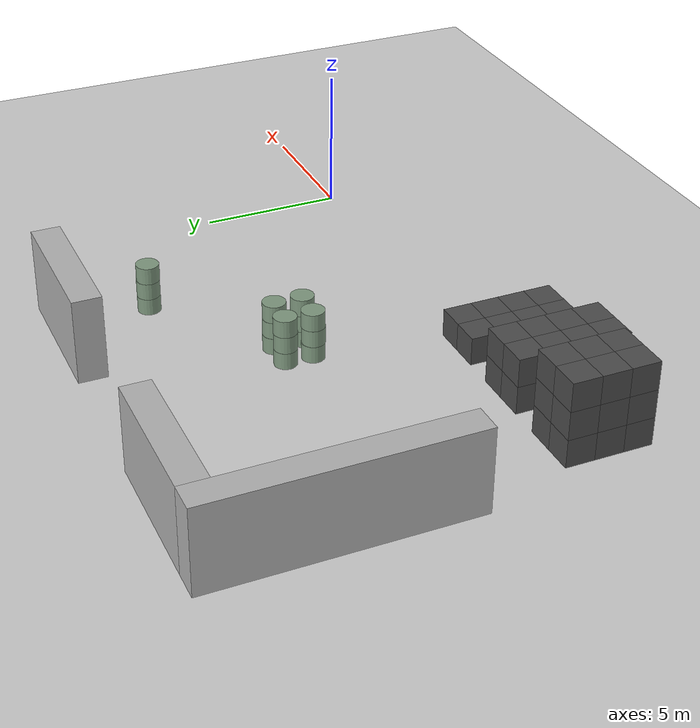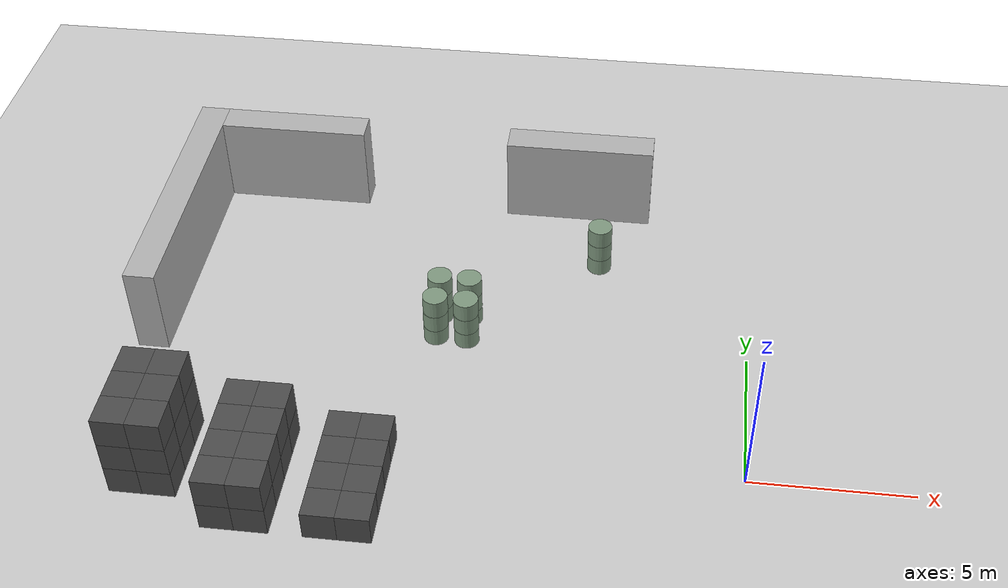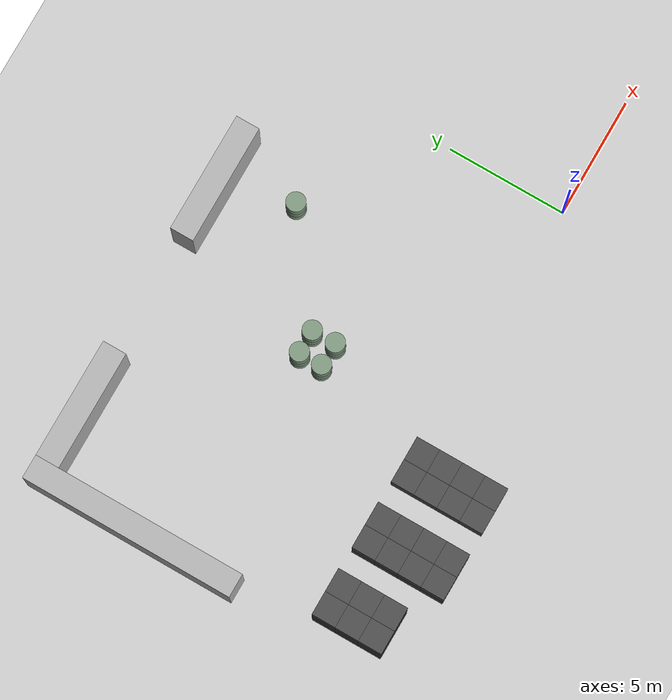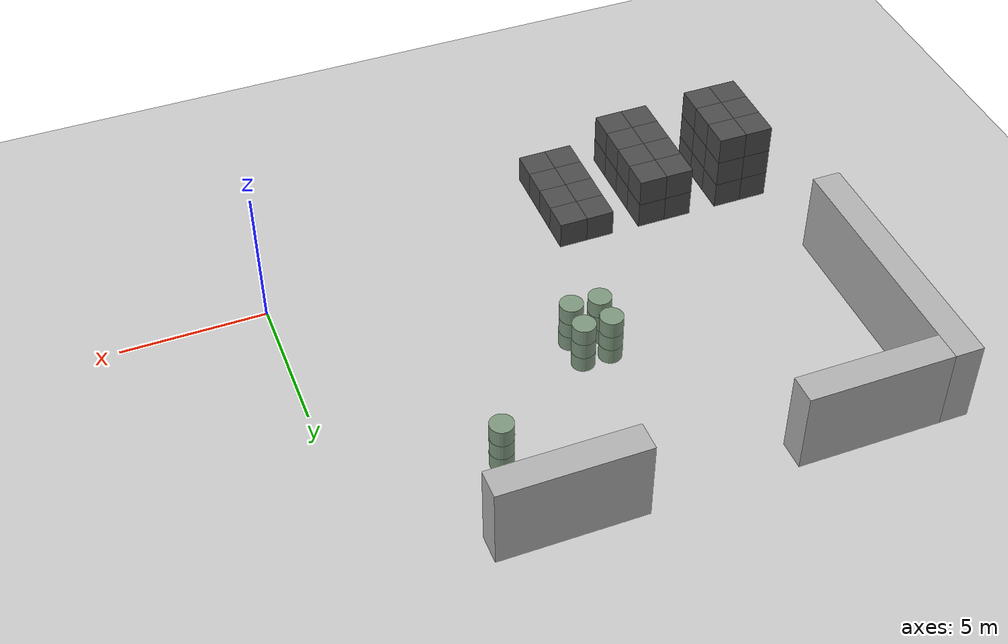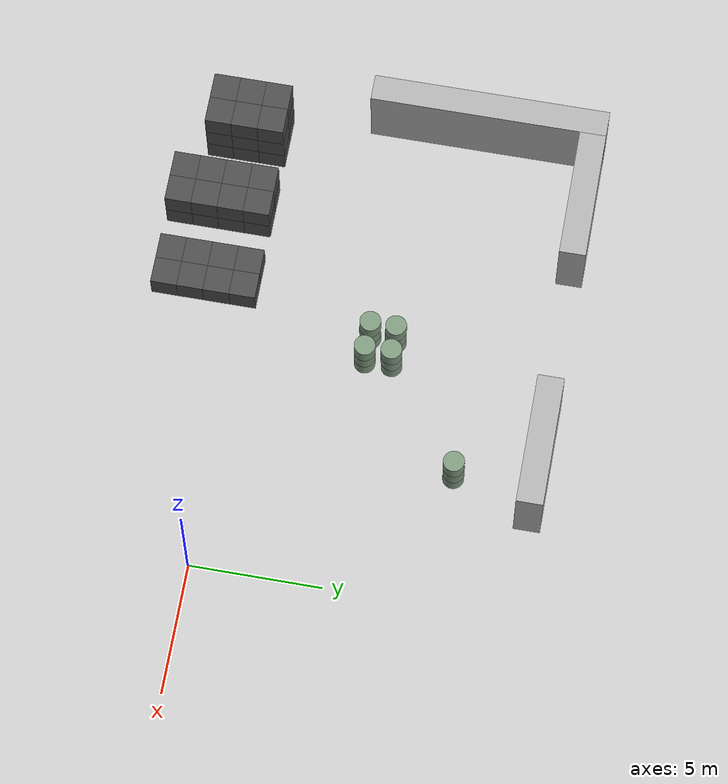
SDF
<sdf version="1.6">
 <world name="default">
  <include><uri>model://ground_plane</uri></include>
  <model name="wall_1">
   <pose>-19.0 8.0 1.5 0 -0 0</pose>
   <static>True</static>
   <link name="link">
    <inertial>
     <mass>100</mass>
     <inertia>
      <ixx>0.166667</ixx>
      <ixy>0</ixy>
      <ixz>0</ixz>
      <iyy>0.166667</iyy>
      <iyz>0</iyz>
      <izz>0.166667</izz>
     </inertia>
    </inertial>
    <collision name="collision"><geometry><box><size>1.0 9.0 3.0</size></box></geometry></collision>
    <visual name="visual">
     <geometry><box><size>1.0 9.0 3.0</size></box></geometry>
     <material><ambient>0.7 0.7 0.7 1</ambient><diffuse>0.7 0.7 0.7 1</diffuse></material>
    </visual>
   </link>
  </model>
  <model name="wall_9">
   <pose>-16.0 12.0 1.5 0 -0 0</pose>
   <static>True</static>
   <link name="link">
    <inertial>
     <mass>100</mass>
     <inertia>
      <ixx>0.166667</ixx>
      <ixy>0</ixy>
      <ixz>0</ixz>
      <iyy>0.166667</iyy>
      <iyz>0</iyz>
      <izz>0.166667</izz>
     </inertia>
    </inertial>
    <collision name="collision"><geometry><box><size>5.0 1.0 3.0</size></box></geometry></collision>
    <visual name="visual">
     <geometry><box><size>5.0 1.0 3.0</size></box></geometry>
     <material><ambient>0.7 0.7 0.7 1</ambient><diffuse>0.7 0.7 0.7 1</diffuse></material>
    </visual>
   </link>
  </model>
  <model name="wall_10">
   <pose>-6.0 12.0 1.5 0 -0 0</pose>
   <static>True</static>
   <link name="link">
    <inertial>
     <mass>100</mass>
     <inertia>
      <ixx>0.166667</ixx>
      <ixy>0</ixy>
      <ixz>0</ixz>
      <iyy>0.166667</iyy>
      <iyz>0</iyz>
      <izz>0.166667</izz>
     </inertia>
    </inertial>
    <collision name="collision"><geometry><box><size>5.0 1.0 3.0</size></box></geometry></collision>
    <visual name="visual">
     <geometry><box><size>5.0 1.0 3.0</size></box></geometry>
     <material><ambient>0.7 0.7 0.7 1</ambient><diffuse>0.7 0.7 0.7 1</diffuse></material>
    </visual>
   </link>
  </model>
  <model name="unit_box_6">
   <pose>-18.0 -2.0 0.5 0 -0 0</pose>
   <static>True</static>
   <link name="link">
    <inertial>
     <mass>100</mass>
     <inertia>
      <ixx>0.166667</ixx>
      <ixy>0</ixy>
      <ixz>0</ixz>
      <iyy>0.166667</iyy>
      <iyz>0</iyz>
      <izz>0.166667</izz>
     </inertia>
    </inertial>
    <collision name="collision"><geometry><box><size>1.0 1.0 1.0</size></box></geometry></collision>
    <visual name="visual">
     <geometry><box><size>1.0 1.0 1.0</size></box></geometry>
     <material><ambient>0.3 0.3 0.3 1</ambient><diffuse>0.3 0.3 0.3 1</diffuse></material>
    </visual>
   </link>
  </model>
  <model name="unit_box_7">
   <pose>-18.0 -2.0 1.5 0 -0 0</pose>
   <static>True</static>
   <link name="link">
    <inertial>
     <mass>100</mass>
     <inertia>
      <ixx>0.166667</ixx>
      <ixy>0</ixy>
      <ixz>0</ixz>
      <iyy>0.166667</iyy>
      <iyz>0</iyz>
      <izz>0.166667</izz>
     </inertia>
    </inertial>
    <collision name="collision"><geometry><box><size>1.0 1.0 1.0</size></box></geometry></collision>
    <visual name="visual">
     <geometry><box><size>1.0 1.0 1.0</size></box></geometry>
     <material><ambient>0.3 0.3 0.3 1</ambient><diffuse>0.3 0.3 0.3 1</diffuse></material>
    </visual>
   </link>
  </model>
  <model name="unit_box_8">
   <pose>-18.0 -2.0 2.5 0 -0 0</pose>
   <static>True</static>
   <link name="link">
    <inertial>
     <mass>100</mass>
     <inertia>
      <ixx>0.166667</ixx>
      <ixy>0</ixy>
      <ixz>0</ixz>
      <iyy>0.166667</iyy>
      <iyz>0</iyz>
      <izz>0.166667</izz>
     </inertia>
    </inertial>
    <collision name="collision"><geometry><box><size>1.0 1.0 1.0</size></box></geometry></collision>
    <visual name="visual">
     <geometry><box><size>1.0 1.0 1.0</size></box></geometry>
     <material><ambient>0.3 0.3 0.3 1</ambient><diffuse>0.3 0.3 0.3 1</diffuse></material>
    </visual>
   </link>
  </model>
  <model name="unit_box_9">
   <pose>-18.0 -1.0 0.5 0 -0 0</pose>
   <static>True</static>
   <link name="link">
    <inertial>
     <mass>100</mass>
     <inertia>
      <ixx>0.166667</ixx>
      <ixy>0</ixy>
      <ixz>0</ixz>
      <iyy>0.166667</iyy>
      <iyz>0</iyz>
      <izz>0.166667</izz>
     </inertia>
    </inertial>
    <collision name="collision"><geometry><box><size>1.0 1.0 1.0</size></box></geometry></collision>
    <visual name="visual">
     <geometry><box><size>1.0 1.0 1.0</size></box></geometry>
     <material><ambient>0.3 0.3 0.3 1</ambient><diffuse>0.3 0.3 0.3 1</diffuse></material>
    </visual>
   </link>
  </model>
  <model name="unit_box_10">
   <pose>-18.0 -1.0 1.5 0 -0 0</pose>
   <static>True</static>
   <link name="link">
    <inertial>
     <mass>100</mass>
     <inertia>
      <ixx>0.166667</ixx>
      <ixy>0</ixy>
      <ixz>0</ixz>
      <iyy>0.166667</iyy>
      <iyz>0</iyz>
      <izz>0.166667</izz>
     </inertia>
    </inertial>
    <collision name="collision"><geometry><box><size>1.0 1.0 1.0</size></box></geometry></collision>
    <visual name="visual">
     <geometry><box><size>1.0 1.0 1.0</size></box></geometry>
     <material><ambient>0.3 0.3 0.3 1</ambient><diffuse>0.3 0.3 0.3 1</diffuse></material>
    </visual>
   </link>
  </model>
  <model name="unit_box_11">
   <pose>-18.0 -1.0 2.5 0 -0 0</pose>
   <static>True</static>
   <link name="link">
    <inertial>
     <mass>100</mass>
     <inertia>
      <ixx>0.166667</ixx>
      <ixy>0</ixy>
      <ixz>0</ixz>
      <iyy>0.166667</iyy>
      <iyz>0</iyz>
      <izz>0.166667</izz>
     </inertia>
    </inertial>
    <collision name="collision"><geometry><box><size>1.0 1.0 1.0</size></box></geometry></collision>
    <visual name="visual">
     <geometry><box><size>1.0 1.0 1.0</size></box></geometry>
     <material><ambient>0.3 0.3 0.3 1</ambient><diffuse>0.3 0.3 0.3 1</diffuse></material>
    </visual>
   </link>
  </model>
  <model name="unit_box_12">
   <pose>-18.0 0.0 0.5 0 -0 0</pose>
   <static>True</static>
   <link name="link">
    <inertial>
     <mass>100</mass>
     <inertia>
      <ixx>0.166667</ixx>
      <ixy>0</ixy>
      <ixz>0</ixz>
      <iyy>0.166667</iyy>
      <iyz>0</iyz>
      <izz>0.166667</izz>
     </inertia>
    </inertial>
    <collision name="collision"><geometry><box><size>1.0 1.0 1.0</size></box></geometry></collision>
    <visual name="visual">
     <geometry><box><size>1.0 1.0 1.0</size></box></geometry>
     <material><ambient>0.3 0.3 0.3 1</ambient><diffuse>0.3 0.3 0.3 1</diffuse></material>
    </visual>
   </link>
  </model>
  <model name="unit_box_13">
   <pose>-18.0 0.0 1.5 0 -0 0</pose>
   <static>True</static>
   <link name="link">
    <inertial>
     <mass>100</mass>
     <inertia>
      <ixx>0.166667</ixx>
      <ixy>0</ixy>
      <ixz>0</ixz>
      <iyy>0.166667</iyy>
      <iyz>0</iyz>
      <izz>0.166667</izz>
     </inertia>
    </inertial>
    <collision name="collision"><geometry><box><size>1.0 1.0 1.0</size></box></geometry></collision>
    <visual name="visual">
     <geometry><box><size>1.0 1.0 1.0</size></box></geometry>
     <material><ambient>0.3 0.3 0.3 1</ambient><diffuse>0.3 0.3 0.3 1</diffuse></material>
    </visual>
   </link>
  </model>
  <model name="unit_box_14">
   <pose>-18.0 0.0 2.5 0 -0 0</pose>
   <static>True</static>
   <link name="link">
    <inertial>
     <mass>100</mass>
     <inertia>
      <ixx>0.166667</ixx>
      <ixy>0</ixy>
      <ixz>0</ixz>
      <iyy>0.166667</iyy>
      <iyz>0</iyz>
      <izz>0.166667</izz>
     </inertia>
    </inertial>
    <collision name="collision"><geometry><box><size>1.0 1.0 1.0</size></box></geometry></collision>
    <visual name="visual">
     <geometry><box><size>1.0 1.0 1.0</size></box></geometry>
     <material><ambient>0.3 0.3 0.3 1</ambient><diffuse>0.3 0.3 0.3 1</diffuse></material>
    </visual>
   </link>
  </model>
  <model name="unit_box_21">
   <pose>-17.0 -2.0 0.5 0 -0 0</pose>
   <static>True</static>
   <link name="link">
    <inertial>
     <mass>100</mass>
     <inertia>
      <ixx>0.166667</ixx>
      <ixy>0</ixy>
      <ixz>0</ixz>
      <iyy>0.166667</iyy>
      <iyz>0</iyz>
      <izz>0.166667</izz>
     </inertia>
    </inertial>
    <collision name="collision"><geometry><box><size>1.0 1.0 1.0</size></box></geometry></collision>
    <visual name="visual">
     <geometry><box><size>1.0 1.0 1.0</size></box></geometry>
     <material><ambient>0.3 0.3 0.3 1</ambient><diffuse>0.3 0.3 0.3 1</diffuse></material>
    </visual>
   </link>
  </model>
  <model name="unit_box_22">
   <pose>-17.0 -2.0 1.5 0 -0 0</pose>
   <static>True</static>
   <link name="link">
    <inertial>
     <mass>100</mass>
     <inertia>
      <ixx>0.166667</ixx>
      <ixy>0</ixy>
      <ixz>0</ixz>
      <iyy>0.166667</iyy>
      <iyz>0</iyz>
      <izz>0.166667</izz>
     </inertia>
    </inertial>
    <collision name="collision"><geometry><box><size>1.0 1.0 1.0</size></box></geometry></collision>
    <visual name="visual">
     <geometry><box><size>1.0 1.0 1.0</size></box></geometry>
     <material><ambient>0.3 0.3 0.3 1</ambient><diffuse>0.3 0.3 0.3 1</diffuse></material>
    </visual>
   </link>
  </model>
  <model name="unit_box_23">
   <pose>-17.0 -2.0 2.5 0 -0 0</pose>
   <static>True</static>
   <link name="link">
    <inertial>
     <mass>100</mass>
     <inertia>
      <ixx>0.166667</ixx>
      <ixy>0</ixy>
      <ixz>0</ixz>
      <iyy>0.166667</iyy>
      <iyz>0</iyz>
      <izz>0.166667</izz>
     </inertia>
    </inertial>
    <collision name="collision"><geometry><box><size>1.0 1.0 1.0</size></box></geometry></collision>
    <visual name="visual">
     <geometry><box><size>1.0 1.0 1.0</size></box></geometry>
     <material><ambient>0.3 0.3 0.3 1</ambient><diffuse>0.3 0.3 0.3 1</diffuse></material>
    </visual>
   </link>
  </model>
  <model name="unit_box_24">
   <pose>-17.0 -1.0 0.5 0 -0 0</pose>
   <static>True</static>
   <link name="link">
    <inertial>
     <mass>100</mass>
     <inertia>
      <ixx>0.166667</ixx>
      <ixy>0</ixy>
      <ixz>0</ixz>
      <iyy>0.166667</iyy>
      <iyz>0</iyz>
      <izz>0.166667</izz>
     </inertia>
    </inertial>
    <collision name="collision"><geometry><box><size>1.0 1.0 1.0</size></box></geometry></collision>
    <visual name="visual">
     <geometry><box><size>1.0 1.0 1.0</size></box></geometry>
     <material><ambient>0.3 0.3 0.3 1</ambient><diffuse>0.3 0.3 0.3 1</diffuse></material>
    </visual>
   </link>
  </model>
  <model name="unit_box_25">
   <pose>-17.0 -1.0 1.5 0 -0 0</pose>
   <static>True</static>
   <link name="link">
    <inertial>
     <mass>100</mass>
     <inertia>
      <ixx>0.166667</ixx>
      <ixy>0</ixy>
      <ixz>0</ixz>
      <iyy>0.166667</iyy>
      <iyz>0</iyz>
      <izz>0.166667</izz>
     </inertia>
    </inertial>
    <collision name="collision"><geometry><box><size>1.0 1.0 1.0</size></box></geometry></collision>
    <visual name="visual">
     <geometry><box><size>1.0 1.0 1.0</size></box></geometry>
     <material><ambient>0.3 0.3 0.3 1</ambient><diffuse>0.3 0.3 0.3 1</diffuse></material>
    </visual>
   </link>
  </model>
  <model name="unit_box_26">
   <pose>-17.0 -1.0 2.5 0 -0 0</pose>
   <static>True</static>
   <link name="link">
    <inertial>
     <mass>100</mass>
     <inertia>
      <ixx>0.166667</ixx>
      <ixy>0</ixy>
      <ixz>0</ixz>
      <iyy>0.166667</iyy>
      <iyz>0</iyz>
      <izz>0.166667</izz>
     </inertia>
    </inertial>
    <collision name="collision"><geometry><box><size>1.0 1.0 1.0</size></box></geometry></collision>
    <visual name="visual">
     <geometry><box><size>1.0 1.0 1.0</size></box></geometry>
     <material><ambient>0.3 0.3 0.3 1</ambient><diffuse>0.3 0.3 0.3 1</diffuse></material>
    </visual>
   </link>
  </model>
  <model name="unit_box_27">
   <pose>-17.0 0.0 0.5 0 -0 0</pose>
   <static>True</static>
   <link name="link">
    <inertial>
     <mass>100</mass>
     <inertia>
      <ixx>0.166667</ixx>
      <ixy>0</ixy>
      <ixz>0</ixz>
      <iyy>0.166667</iyy>
      <iyz>0</iyz>
      <izz>0.166667</izz>
     </inertia>
    </inertial>
    <collision name="collision"><geometry><box><size>1.0 1.0 1.0</size></box></geometry></collision>
    <visual name="visual">
     <geometry><box><size>1.0 1.0 1.0</size></box></geometry>
     <material><ambient>0.3 0.3 0.3 1</ambient><diffuse>0.3 0.3 0.3 1</diffuse></material>
    </visual>
   </link>
  </model>
  <model name="unit_box_28">
   <pose>-17.0 0.0 1.5 0 -0 0</pose>
   <static>True</static>
   <link name="link">
    <inertial>
     <mass>100</mass>
     <inertia>
      <ixx>0.166667</ixx>
      <ixy>0</ixy>
      <ixz>0</ixz>
      <iyy>0.166667</iyy>
      <iyz>0</iyz>
      <izz>0.166667</izz>
     </inertia>
    </inertial>
    <collision name="collision"><geometry><box><size>1.0 1.0 1.0</size></box></geometry></collision>
    <visual name="visual">
     <geometry><box><size>1.0 1.0 1.0</size></box></geometry>
     <material><ambient>0.3 0.3 0.3 1</ambient><diffuse>0.3 0.3 0.3 1</diffuse></material>
    </visual>
   </link>
  </model>
  <model name="unit_box_29">
   <pose>-17.0 0.0 2.5 0 -0 0</pose>
   <static>True</static>
   <link name="link">
    <inertial>
     <mass>100</mass>
     <inertia>
      <ixx>0.166667</ixx>
      <ixy>0</ixy>
      <ixz>0</ixz>
      <iyy>0.166667</iyy>
      <iyz>0</iyz>
      <izz>0.166667</izz>
     </inertia>
    </inertial>
    <collision name="collision"><geometry><box><size>1.0 1.0 1.0</size></box></geometry></collision>
    <visual name="visual">
     <geometry><box><size>1.0 1.0 1.0</size></box></geometry>
     <material><ambient>0.3 0.3 0.3 1</ambient><diffuse>0.3 0.3 0.3 1</diffuse></material>
    </visual>
   </link>
  </model>
  <model name="unit_box_32">
   <pose>-15.0 -3.0 0.5 0 -0 0</pose>
   <static>True</static>
   <link name="link">
    <inertial>
     <mass>100</mass>
     <inertia>
      <ixx>0.166667</ixx>
      <ixy>0</ixy>
      <ixz>0</ixz>
      <iyy>0.166667</iyy>
      <iyz>0</iyz>
      <izz>0.166667</izz>
     </inertia>
    </inertial>
    <collision name="collision"><geometry><box><size>1.0 1.0 1.0</size></box></geometry></collision>
    <visual name="visual">
     <geometry><box><size>1.0 1.0 1.0</size></box></geometry>
     <material><ambient>0.3 0.3 0.3 1</ambient><diffuse>0.3 0.3 0.3 1</diffuse></material>
    </visual>
   </link>
  </model>
  <model name="unit_box_33">
   <pose>-15.0 -3.0 1.5 0 -0 0</pose>
   <static>True</static>
   <link name="link">
    <inertial>
     <mass>100</mass>
     <inertia>
      <ixx>0.166667</ixx>
      <ixy>0</ixy>
      <ixz>0</ixz>
      <iyy>0.166667</iyy>
      <iyz>0</iyz>
      <izz>0.166667</izz>
     </inertia>
    </inertial>
    <collision name="collision"><geometry><box><size>1.0 1.0 1.0</size></box></geometry></collision>
    <visual name="visual">
     <geometry><box><size>1.0 1.0 1.0</size></box></geometry>
     <material><ambient>0.3 0.3 0.3 1</ambient><diffuse>0.3 0.3 0.3 1</diffuse></material>
    </visual>
   </link>
  </model>
  <model name="unit_box_34">
   <pose>-15.0 -2.0 0.5 0 -0 0</pose>
   <static>True</static>
   <link name="link">
    <inertial>
     <mass>100</mass>
     <inertia>
      <ixx>0.166667</ixx>
      <ixy>0</ixy>
      <ixz>0</ixz>
      <iyy>0.166667</iyy>
      <iyz>0</iyz>
      <izz>0.166667</izz>
     </inertia>
    </inertial>
    <collision name="collision"><geometry><box><size>1.0 1.0 1.0</size></box></geometry></collision>
    <visual name="visual">
     <geometry><box><size>1.0 1.0 1.0</size></box></geometry>
     <material><ambient>0.3 0.3 0.3 1</ambient><diffuse>0.3 0.3 0.3 1</diffuse></material>
    </visual>
   </link>
  </model>
  <model name="unit_box_35">
   <pose>-15.0 -2.0 1.5 0 -0 0</pose>
   <static>True</static>
   <link name="link">
    <inertial>
     <mass>100</mass>
     <inertia>
      <ixx>0.166667</ixx>
      <ixy>0</ixy>
      <ixz>0</ixz>
      <iyy>0.166667</iyy>
      <iyz>0</iyz>
      <izz>0.166667</izz>
     </inertia>
    </inertial>
    <collision name="collision"><geometry><box><size>1.0 1.0 1.0</size></box></geometry></collision>
    <visual name="visual">
     <geometry><box><size>1.0 1.0 1.0</size></box></geometry>
     <material><ambient>0.3 0.3 0.3 1</ambient><diffuse>0.3 0.3 0.3 1</diffuse></material>
    </visual>
   </link>
  </model>
  <model name="unit_box_36">
   <pose>-15.0 -1.0 0.5 0 -0 0</pose>
   <static>True</static>
   <link name="link">
    <inertial>
     <mass>100</mass>
     <inertia>
      <ixx>0.166667</ixx>
      <ixy>0</ixy>
      <ixz>0</ixz>
      <iyy>0.166667</iyy>
      <iyz>0</iyz>
      <izz>0.166667</izz>
     </inertia>
    </inertial>
    <collision name="collision"><geometry><box><size>1.0 1.0 1.0</size></box></geometry></collision>
    <visual name="visual">
     <geometry><box><size>1.0 1.0 1.0</size></box></geometry>
     <material><ambient>0.3 0.3 0.3 1</ambient><diffuse>0.3 0.3 0.3 1</diffuse></material>
    </visual>
   </link>
  </model>
  <model name="unit_box_37">
   <pose>-15.0 -1.0 1.5 0 -0 0</pose>
   <static>True</static>
   <link name="link">
    <inertial>
     <mass>100</mass>
     <inertia>
      <ixx>0.166667</ixx>
      <ixy>0</ixy>
      <ixz>0</ixz>
      <iyy>0.166667</iyy>
      <iyz>0</iyz>
      <izz>0.166667</izz>
     </inertia>
    </inertial>
    <collision name="collision"><geometry><box><size>1.0 1.0 1.0</size></box></geometry></collision>
    <visual name="visual">
     <geometry><box><size>1.0 1.0 1.0</size></box></geometry>
     <material><ambient>0.3 0.3 0.3 1</ambient><diffuse>0.3 0.3 0.3 1</diffuse></material>
    </visual>
   </link>
  </model>
  <model name="unit_box_38">
   <pose>-15.0 0.0 0.5 0 -0 0</pose>
   <static>True</static>
   <link name="link">
    <inertial>
     <mass>100</mass>
     <inertia>
      <ixx>0.166667</ixx>
      <ixy>0</ixy>
      <ixz>0</ixz>
      <iyy>0.166667</iyy>
      <iyz>0</iyz>
      <izz>0.166667</izz>
     </inertia>
    </inertial>
    <collision name="collision"><geometry><box><size>1.0 1.0 1.0</size></box></geometry></collision>
    <visual name="visual">
     <geometry><box><size>1.0 1.0 1.0</size></box></geometry>
     <material><ambient>0.3 0.3 0.3 1</ambient><diffuse>0.3 0.3 0.3 1</diffuse></material>
    </visual>
   </link>
  </model>
  <model name="unit_box_39">
   <pose>-15.0 0.0 1.5 0 -0 0</pose>
   <static>True</static>
   <link name="link">
    <inertial>
     <mass>100</mass>
     <inertia>
      <ixx>0.166667</ixx>
      <ixy>0</ixy>
      <ixz>0</ixz>
      <iyy>0.166667</iyy>
      <iyz>0</iyz>
      <izz>0.166667</izz>
     </inertia>
    </inertial>
    <collision name="collision"><geometry><box><size>1.0 1.0 1.0</size></box></geometry></collision>
    <visual name="visual">
     <geometry><box><size>1.0 1.0 1.0</size></box></geometry>
     <material><ambient>0.3 0.3 0.3 1</ambient><diffuse>0.3 0.3 0.3 1</diffuse></material>
    </visual>
   </link>
  </model>
  <model name="unit_box_42">
   <pose>-14.0 -3.0 0.5 0 -0 0</pose>
   <static>True</static>
   <link name="link">
    <inertial>
     <mass>100</mass>
     <inertia>
      <ixx>0.166667</ixx>
      <ixy>0</ixy>
      <ixz>0</ixz>
      <iyy>0.166667</iyy>
      <iyz>0</iyz>
      <izz>0.166667</izz>
     </inertia>
    </inertial>
    <collision name="collision"><geometry><box><size>1.0 1.0 1.0</size></box></geometry></collision>
    <visual name="visual">
     <geometry><box><size>1.0 1.0 1.0</size></box></geometry>
     <material><ambient>0.3 0.3 0.3 1</ambient><diffuse>0.3 0.3 0.3 1</diffuse></material>
    </visual>
   </link>
  </model>
  <model name="unit_box_43">
   <pose>-14.0 -3.0 1.5 0 -0 0</pose>
   <static>True</static>
   <link name="link">
    <inertial>
     <mass>100</mass>
     <inertia>
      <ixx>0.166667</ixx>
      <ixy>0</ixy>
      <ixz>0</ixz>
      <iyy>0.166667</iyy>
      <iyz>0</iyz>
      <izz>0.166667</izz>
     </inertia>
    </inertial>
    <collision name="collision"><geometry><box><size>1.0 1.0 1.0</size></box></geometry></collision>
    <visual name="visual">
     <geometry><box><size>1.0 1.0 1.0</size></box></geometry>
     <material><ambient>0.3 0.3 0.3 1</ambient><diffuse>0.3 0.3 0.3 1</diffuse></material>
    </visual>
   </link>
  </model>
  <model name="unit_box_44">
   <pose>-14.0 -2.0 0.5 0 -0 0</pose>
   <static>True</static>
   <link name="link">
    <inertial>
     <mass>100</mass>
     <inertia>
      <ixx>0.166667</ixx>
      <ixy>0</ixy>
      <ixz>0</ixz>
      <iyy>0.166667</iyy>
      <iyz>0</iyz>
      <izz>0.166667</izz>
     </inertia>
    </inertial>
    <collision name="collision"><geometry><box><size>1.0 1.0 1.0</size></box></geometry></collision>
    <visual name="visual">
     <geometry><box><size>1.0 1.0 1.0</size></box></geometry>
     <material><ambient>0.3 0.3 0.3 1</ambient><diffuse>0.3 0.3 0.3 1</diffuse></material>
    </visual>
   </link>
  </model>
  <model name="unit_box_45">
   <pose>-14.0 -2.0 1.5 0 -0 0</pose>
   <static>True</static>
   <link name="link">
    <inertial>
     <mass>100</mass>
     <inertia>
      <ixx>0.166667</ixx>
      <ixy>0</ixy>
      <ixz>0</ixz>
      <iyy>0.166667</iyy>
      <iyz>0</iyz>
      <izz>0.166667</izz>
     </inertia>
    </inertial>
    <collision name="collision"><geometry><box><size>1.0 1.0 1.0</size></box></geometry></collision>
    <visual name="visual">
     <geometry><box><size>1.0 1.0 1.0</size></box></geometry>
     <material><ambient>0.3 0.3 0.3 1</ambient><diffuse>0.3 0.3 0.3 1</diffuse></material>
    </visual>
   </link>
  </model>
  <model name="unit_box_46">
   <pose>-14.0 -1.0 0.5 0 -0 0</pose>
   <static>True</static>
   <link name="link">
    <inertial>
     <mass>100</mass>
     <inertia>
      <ixx>0.166667</ixx>
      <ixy>0</ixy>
      <ixz>0</ixz>
      <iyy>0.166667</iyy>
      <iyz>0</iyz>
      <izz>0.166667</izz>
     </inertia>
    </inertial>
    <collision name="collision"><geometry><box><size>1.0 1.0 1.0</size></box></geometry></collision>
    <visual name="visual">
     <geometry><box><size>1.0 1.0 1.0</size></box></geometry>
     <material><ambient>0.3 0.3 0.3 1</ambient><diffuse>0.3 0.3 0.3 1</diffuse></material>
    </visual>
   </link>
  </model>
  <model name="unit_box_47">
   <pose>-14.0 -1.0 1.5 0 -0 0</pose>
   <static>True</static>
   <link name="link">
    <inertial>
     <mass>100</mass>
     <inertia>
      <ixx>0.166667</ixx>
      <ixy>0</ixy>
      <ixz>0</ixz>
      <iyy>0.166667</iyy>
      <iyz>0</iyz>
      <izz>0.166667</izz>
     </inertia>
    </inertial>
    <collision name="collision"><geometry><box><size>1.0 1.0 1.0</size></box></geometry></collision>
    <visual name="visual">
     <geometry><box><size>1.0 1.0 1.0</size></box></geometry>
     <material><ambient>0.3 0.3 0.3 1</ambient><diffuse>0.3 0.3 0.3 1</diffuse></material>
    </visual>
   </link>
  </model>
  <model name="unit_box_48">
   <pose>-14.0 0.0 0.5 0 -0 0</pose>
   <static>True</static>
   <link name="link">
    <inertial>
     <mass>100</mass>
     <inertia>
      <ixx>0.166667</ixx>
      <ixy>0</ixy>
      <ixz>0</ixz>
      <iyy>0.166667</iyy>
      <iyz>0</iyz>
      <izz>0.166667</izz>
     </inertia>
    </inertial>
    <collision name="collision"><geometry><box><size>1.0 1.0 1.0</size></box></geometry></collision>
    <visual name="visual">
     <geometry><box><size>1.0 1.0 1.0</size></box></geometry>
     <material><ambient>0.3 0.3 0.3 1</ambient><diffuse>0.3 0.3 0.3 1</diffuse></material>
    </visual>
   </link>
  </model>
  <model name="unit_box_49">
   <pose>-14.0 0.0 1.5 0 -0 0</pose>
   <static>True</static>
   <link name="link">
    <inertial>
     <mass>100</mass>
     <inertia>
      <ixx>0.166667</ixx>
      <ixy>0</ixy>
      <ixz>0</ixz>
      <iyy>0.166667</iyy>
      <iyz>0</iyz>
      <izz>0.166667</izz>
     </inertia>
    </inertial>
    <collision name="collision"><geometry><box><size>1.0 1.0 1.0</size></box></geometry></collision>
    <visual name="visual">
     <geometry><box><size>1.0 1.0 1.0</size></box></geometry>
     <material><ambient>0.3 0.3 0.3 1</ambient><diffuse>0.3 0.3 0.3 1</diffuse></material>
    </visual>
   </link>
  </model>
  <model name="unit_box_51">
   <pose>-12.0 -3.0 0.5 0 -0 0</pose>
   <static>True</static>
   <link name="link">
    <inertial>
     <mass>100</mass>
     <inertia>
      <ixx>0.166667</ixx>
      <ixy>0</ixy>
      <ixz>0</ixz>
      <iyy>0.166667</iyy>
      <iyz>0</iyz>
      <izz>0.166667</izz>
     </inertia>
    </inertial>
    <collision name="collision"><geometry><box><size>1.0 1.0 1.0</size></box></geometry></collision>
    <visual name="visual">
     <geometry><box><size>1.0 1.0 1.0</size></box></geometry>
     <material><ambient>0.3 0.3 0.3 1</ambient><diffuse>0.3 0.3 0.3 1</diffuse></material>
    </visual>
   </link>
  </model>
  <model name="unit_box_52">
   <pose>-12.0 -2.0 0.5 0 -0 0</pose>
   <static>True</static>
   <link name="link">
    <inertial>
     <mass>100</mass>
     <inertia>
      <ixx>0.166667</ixx>
      <ixy>0</ixy>
      <ixz>0</ixz>
      <iyy>0.166667</iyy>
      <iyz>0</iyz>
      <izz>0.166667</izz>
     </inertia>
    </inertial>
    <collision name="collision"><geometry><box><size>1.0 1.0 1.0</size></box></geometry></collision>
    <visual name="visual">
     <geometry><box><size>1.0 1.0 1.0</size></box></geometry>
     <material><ambient>0.3 0.3 0.3 1</ambient><diffuse>0.3 0.3 0.3 1</diffuse></material>
    </visual>
   </link>
  </model>
  <model name="unit_box_53">
   <pose>-12.0 -1.0 0.5 0 -0 0</pose>
   <static>True</static>
   <link name="link">
    <inertial>
     <mass>100</mass>
     <inertia>
      <ixx>0.166667</ixx>
      <ixy>0</ixy>
      <ixz>0</ixz>
      <iyy>0.166667</iyy>
      <iyz>0</iyz>
      <izz>0.166667</izz>
     </inertia>
    </inertial>
    <collision name="collision"><geometry><box><size>1.0 1.0 1.0</size></box></geometry></collision>
    <visual name="visual">
     <geometry><box><size>1.0 1.0 1.0</size></box></geometry>
     <material><ambient>0.3 0.3 0.3 1</ambient><diffuse>0.3 0.3 0.3 1</diffuse></material>
    </visual>
   </link>
  </model>
  <model name="unit_box_54">
   <pose>-12.0 0.0 0.5 0 -0 0</pose>
   <static>True</static>
   <link name="link">
    <inertial>
     <mass>100</mass>
     <inertia>
      <ixx>0.166667</ixx>
      <ixy>0</ixy>
      <ixz>0</ixz>
      <iyy>0.166667</iyy>
      <iyz>0</iyz>
      <izz>0.166667</izz>
     </inertia>
    </inertial>
    <collision name="collision"><geometry><box><size>1.0 1.0 1.0</size></box></geometry></collision>
    <visual name="visual">
     <geometry><box><size>1.0 1.0 1.0</size></box></geometry>
     <material><ambient>0.3 0.3 0.3 1</ambient><diffuse>0.3 0.3 0.3 1</diffuse></material>
    </visual>
   </link>
  </model>
  <model name="unit_box_56">
   <pose>-11.0 -3.0 0.5 0 -0 0</pose>
   <static>True</static>
   <link name="link">
    <inertial>
     <mass>100</mass>
     <inertia>
      <ixx>0.166667</ixx>
      <ixy>0</ixy>
      <ixz>0</ixz>
      <iyy>0.166667</iyy>
      <iyz>0</iyz>
      <izz>0.166667</izz>
     </inertia>
    </inertial>
    <collision name="collision"><geometry><box><size>1.0 1.0 1.0</size></box></geometry></collision>
    <visual name="visual">
     <geometry><box><size>1.0 1.0 1.0</size></box></geometry>
     <material><ambient>0.3 0.3 0.3 1</ambient><diffuse>0.3 0.3 0.3 1</diffuse></material>
    </visual>
   </link>
  </model>
  <model name="unit_box_57">
   <pose>-11.0 -2.0 0.5 0 -0 0</pose>
   <static>True</static>
   <link name="link">
    <inertial>
     <mass>100</mass>
     <inertia>
      <ixx>0.166667</ixx>
      <ixy>0</ixy>
      <ixz>0</ixz>
      <iyy>0.166667</iyy>
      <iyz>0</iyz>
      <izz>0.166667</izz>
     </inertia>
    </inertial>
    <collision name="collision"><geometry><box><size>1.0 1.0 1.0</size></box></geometry></collision>
    <visual name="visual">
     <geometry><box><size>1.0 1.0 1.0</size></box></geometry>
     <material><ambient>0.3 0.3 0.3 1</ambient><diffuse>0.3 0.3 0.3 1</diffuse></material>
    </visual>
   </link>
  </model>
  <model name="unit_box_58">
   <pose>-11.0 -1.0 0.5 0 -0 0</pose>
   <static>True</static>
   <link name="link">
    <inertial>
     <mass>100</mass>
     <inertia>
      <ixx>0.166667</ixx>
      <ixy>0</ixy>
      <ixz>0</ixz>
      <iyy>0.166667</iyy>
      <iyz>0</iyz>
      <izz>0.166667</izz>
     </inertia>
    </inertial>
    <collision name="collision"><geometry><box><size>1.0 1.0 1.0</size></box></geometry></collision>
    <visual name="visual">
     <geometry><box><size>1.0 1.0 1.0</size></box></geometry>
     <material><ambient>0.3 0.3 0.3 1</ambient><diffuse>0.3 0.3 0.3 1</diffuse></material>
    </visual>
   </link>
  </model>
  <model name="unit_box_59">
   <pose>-11.0 0.0 0.5 0 -0 0</pose>
   <static>True</static>
   <link name="link">
    <inertial>
     <mass>100</mass>
     <inertia>
      <ixx>0.166667</ixx>
      <ixy>0</ixy>
      <ixz>0</ixz>
      <iyy>0.166667</iyy>
      <iyz>0</iyz>
      <izz>0.166667</izz>
     </inertia>
    </inertial>
    <collision name="collision"><geometry><box><size>1.0 1.0 1.0</size></box></geometry></collision>
    <visual name="visual">
     <geometry><box><size>1.0 1.0 1.0</size></box></geometry>
     <material><ambient>0.3 0.3 0.3 1</ambient><diffuse>0.3 0.3 0.3 1</diffuse></material>
    </visual>
   </link>
  </model>
  <model name="unit_cylinder_42">
   <pose>-10.0127913129 5.00137831187 0.3 0 -0 0</pose>
   <static>True</static>
   <link name="link">
    <inertial>
     <mass>100</mass>
     <inertia><ixx>0.145833</ixx><ixy>0</ixy><ixz>0</ixz><iyy>0.145833</iyy><iyz>0</iyz><izz>0.125</izz></inertia>
    </inertial>
    <collision name="collision">
     <geometry><cylinder><radius>0.4</radius><length>0.6</length></cylinder></geometry>
     <max_contacts>100</max_contacts>
    </collision>
    <visual name="visual">
     <geometry><cylinder><radius>0.4</radius><length>0.6</length></cylinder></geometry>
     <material><ambient>0.5 0.6 0.5 1</ambient><diffuse>0.5 0.6 0.5 1</diffuse></material>
    </visual>
   </link>
  </model>
  <model name="unit_cylinder_43">
   <pose>-10.0120164357 4.99006094943 0.9 0 -0 0</pose>
   <static>True</static>
   <link name="link">
    <inertial>
     <mass>100</mass>
     <inertia><ixx>0.145833</ixx><ixy>0</ixy><ixz>0</ixz><iyy>0.145833</iyy><iyz>0</iyz><izz>0.125</izz></inertia>
    </inertial>
    <collision name="collision">
     <geometry><cylinder><radius>0.4</radius><length>0.6</length></cylinder></geometry>
     <max_contacts>100</max_contacts>
    </collision>
    <visual name="visual">
     <geometry><cylinder><radius>0.4</radius><length>0.6</length></cylinder></geometry>
     <material><ambient>0.5 0.6 0.5 1</ambient><diffuse>0.5 0.6 0.5 1</diffuse></material>
    </visual>
   </link>
  </model>
  <model name="unit_cylinder_44">
   <pose>-10.0053809104 5.00176898134 1.5 0 -0 0</pose>
   <static>True</static>
   <link name="link">
    <inertial>
     <mass>100</mass>
     <inertia><ixx>0.145833</ixx><ixy>0</ixy><ixz>0</ixz><iyy>0.145833</iyy><iyz>0</iyz><izz>0.125</izz></inertia>
    </inertial>
    <collision name="collision">
     <geometry><cylinder><radius>0.4</radius><length>0.6</length></cylinder></geometry>
     <max_contacts>100</max_contacts>
    </collision>
    <visual name="visual">
     <geometry><cylinder><radius>0.4</radius><length>0.6</length></cylinder></geometry>
     <material><ambient>0.5 0.6 0.5 1</ambient><diffuse>0.5 0.6 0.5 1</diffuse></material>
    </visual>
   </link>
  </model>
  <model name="unit_cylinder_45">
   <pose>-10.01223839 5.9691161186 0.3 0 -0 0</pose>
   <static>True</static>
   <link name="link">
    <inertial>
     <mass>100</mass>
     <inertia><ixx>0.145833</ixx><ixy>0</ixy><ixz>0</ixz><iyy>0.145833</iyy><iyz>0</iyz><izz>0.125</izz></inertia>
    </inertial>
    <collision name="collision">
     <geometry><cylinder><radius>0.4</radius><length>0.6</length></cylinder></geometry>
     <max_contacts>100</max_contacts>
    </collision>
    <visual name="visual">
     <geometry><cylinder><radius>0.4</radius><length>0.6</length></cylinder></geometry>
     <material><ambient>0.5 0.6 0.5 1</ambient><diffuse>0.5 0.6 0.5 1</diffuse></material>
    </visual>
   </link>
  </model>
  <model name="unit_cylinder_46">
   <pose>-10.0126425988 5.96655075078 0.9 0 -0 0</pose>
   <static>True</static>
   <link name="link">
    <inertial>
     <mass>100</mass>
     <inertia><ixx>0.145833</ixx><ixy>0</ixy><ixz>0</ixz><iyy>0.145833</iyy><iyz>0</iyz><izz>0.125</izz></inertia>
    </inertial>
    <collision name="collision">
     <geometry><cylinder><radius>0.4</radius><length>0.6</length></cylinder></geometry>
     <max_contacts>100</max_contacts>
    </collision>
    <visual name="visual">
     <geometry><cylinder><radius>0.4</radius><length>0.6</length></cylinder></geometry>
     <material><ambient>0.5 0.6 0.5 1</ambient><diffuse>0.5 0.6 0.5 1</diffuse></material>
    </visual>
   </link>
  </model>
  <model name="unit_cylinder_47">
   <pose>-10.0036460611 5.97634523684 1.5 0 -0 0</pose>
   <static>True</static>
   <link name="link">
    <inertial>
     <mass>100</mass>
     <inertia><ixx>0.145833</ixx><ixy>0</ixy><ixz>0</ixz><iyy>0.145833</iyy><iyz>0</iyz><izz>0.125</izz></inertia>
    </inertial>
    <collision name="collision">
     <geometry><cylinder><radius>0.4</radius><length>0.6</length></cylinder></geometry>
     <max_contacts>100</max_contacts>
    </collision>
    <visual name="visual">
     <geometry><cylinder><radius>0.4</radius><length>0.6</length></cylinder></geometry>
     <material><ambient>0.5 0.6 0.5 1</ambient><diffuse>0.5 0.6 0.5 1</diffuse></material>
    </visual>
   </link>
  </model>
  <model name="unit_cylinder_48">
   <pose>-9.01397072648 4.96046815298 0.3 0 -0 0</pose>
   <static>True</static>
   <link name="link">
    <inertial>
     <mass>100</mass>
     <inertia><ixx>0.145833</ixx><ixy>0</ixy><ixz>0</ixz><iyy>0.145833</iyy><iyz>0</iyz><izz>0.125</izz></inertia>
    </inertial>
    <collision name="collision">
     <geometry><cylinder><radius>0.4</radius><length>0.6</length></cylinder></geometry>
     <max_contacts>100</max_contacts>
    </collision>
    <visual name="visual">
     <geometry><cylinder><radius>0.4</radius><length>0.6</length></cylinder></geometry>
     <material><ambient>0.5 0.6 0.5 1</ambient><diffuse>0.5 0.6 0.5 1</diffuse></material>
    </visual>
   </link>
  </model>
  <model name="unit_cylinder_49">
   <pose>-9.016103663 4.9583618354 0.9 0 -0 0</pose>
   <static>True</static>
   <link name="link">
    <inertial>
     <mass>100</mass>
     <inertia><ixx>0.145833</ixx><ixy>0</ixy><ixz>0</ixz><iyy>0.145833</iyy><iyz>0</iyz><izz>0.125</izz></inertia>
    </inertial>
    <collision name="collision">
     <geometry><cylinder><radius>0.4</radius><length>0.6</length></cylinder></geometry>
     <max_contacts>100</max_contacts>
    </collision>
    <visual name="visual">
     <geometry><cylinder><radius>0.4</radius><length>0.6</length></cylinder></geometry>
     <material><ambient>0.5 0.6 0.5 1</ambient><diffuse>0.5 0.6 0.5 1</diffuse></material>
    </visual>
   </link>
  </model>
  <model name="unit_cylinder_50">
   <pose>-9.01604091481 4.96893045023 1.5 0 -0 0</pose>
   <static>True</static>
   <link name="link">
    <inertial>
     <mass>100</mass>
     <inertia><ixx>0.145833</ixx><ixy>0</ixy><ixz>0</ixz><iyy>0.145833</iyy><iyz>0</iyz><izz>0.125</izz></inertia>
    </inertial>
    <collision name="collision">
     <geometry><cylinder><radius>0.4</radius><length>0.6</length></cylinder></geometry>
     <max_contacts>100</max_contacts>
    </collision>
    <visual name="visual">
     <geometry><cylinder><radius>0.4</radius><length>0.6</length></cylinder></geometry>
     <material><ambient>0.5 0.6 0.5 1</ambient><diffuse>0.5 0.6 0.5 1</diffuse></material>
    </visual>
   </link>
  </model>
  <model name="unit_cylinder_51">
   <pose>-9.04438377385 5.97957399353 0.3 0 -0 0</pose>
   <static>True</static>
   <link name="link">
    <inertial>
     <mass>100</mass>
     <inertia><ixx>0.145833</ixx><ixy>0</ixy><ixz>0</ixz><iyy>0.145833</iyy><iyz>0</iyz><izz>0.125</izz></inertia>
    </inertial>
    <collision name="collision">
     <geometry><cylinder><radius>0.4</radius><length>0.6</length></cylinder></geometry>
     <max_contacts>100</max_contacts>
    </collision>
    <visual name="visual">
     <geometry><cylinder><radius>0.4</radius><length>0.6</length></cylinder></geometry>
     <material><ambient>0.5 0.6 0.5 1</ambient><diffuse>0.5 0.6 0.5 1</diffuse></material>
    </visual>
   </link>
  </model>
  <model name="unit_cylinder_52">
   <pose>-9.03950074846 5.9764364676 0.9 0 -0 0</pose>
   <static>True</static>
   <link name="link">
    <inertial>
     <mass>100</mass>
     <inertia><ixx>0.145833</ixx><ixy>0</ixy><ixz>0</ixz><iyy>0.145833</iyy><iyz>0</iyz><izz>0.125</izz></inertia>
    </inertial>
    <collision name="collision">
     <geometry><cylinder><radius>0.4</radius><length>0.6</length></cylinder></geometry>
     <max_contacts>100</max_contacts>
    </collision>
    <visual name="visual">
     <geometry><cylinder><radius>0.4</radius><length>0.6</length></cylinder></geometry>
     <material><ambient>0.5 0.6 0.5 1</ambient><diffuse>0.5 0.6 0.5 1</diffuse></material>
    </visual>
   </link>
  </model>
  <model name="unit_cylinder_53">
   <pose>-9.03944993804 5.96979836536 1.5 0 -0 0</pose>
   <static>True</static>
   <link name="link">
    <inertial>
     <mass>100</mass>
     <inertia><ixx>0.145833</ixx><ixy>0</ixy><ixz>0</ixz><iyy>0.145833</iyy><iyz>0</iyz><izz>0.125</izz></inertia>
    </inertial>
    <collision name="collision">
     <geometry><cylinder><radius>0.4</radius><length>0.6</length></cylinder></geometry>
     <max_contacts>100</max_contacts>
    </collision>
    <visual name="visual">
     <geometry><cylinder><radius>0.4</radius><length>0.6</length></cylinder></geometry>
     <material><ambient>0.5 0.6 0.5 1</ambient><diffuse>0.5 0.6 0.5 1</diffuse></material>
    </visual>
   </link>
  </model>
  <model name="unit_cylinder_87">
   <pose>-5.04448436562 9.0064607999 0.3 0 -0 0</pose>
   <static>True</static>
   <link name="link">
    <inertial>
     <mass>100</mass>
     <inertia><ixx>0.145833</ixx><ixy>0</ixy><ixz>0</ixz><iyy>0.145833</iyy><iyz>0</iyz><izz>0.125</izz></inertia>
    </inertial>
    <collision name="collision">
     <geometry><cylinder><radius>0.4</radius><length>0.6</length></cylinder></geometry>
     <max_contacts>100</max_contacts>
    </collision>
    <visual name="visual">
     <geometry><cylinder><radius>0.4</radius><length>0.6</length></cylinder></geometry>
     <material><ambient>0.5 0.6 0.5 1</ambient><diffuse>0.5 0.6 0.5 1</diffuse></material>
    </visual>
   </link>
  </model>
  <model name="unit_cylinder_88">
   <pose>-5.05137672209 9.009480223 0.9 0 -0 0</pose>
   <static>True</static>
   <link name="link">
    <inertial>
     <mass>100</mass>
     <inertia><ixx>0.145833</ixx><ixy>0</ixy><ixz>0</ixz><iyy>0.145833</iyy><iyz>0</iyz><izz>0.125</izz></inertia>
    </inertial>
    <collision name="collision">
     <geometry><cylinder><radius>0.4</radius><length>0.6</length></cylinder></geometry>
     <max_contacts>100</max_contacts>
    </collision>
    <visual name="visual">
     <geometry><cylinder><radius>0.4</radius><length>0.6</length></cylinder></geometry>
     <material><ambient>0.5 0.6 0.5 1</ambient><diffuse>0.5 0.6 0.5 1</diffuse></material>
    </visual>
   </link>
  </model>
  <model name="unit_cylinder_89">
   <pose>-5.05792721676 8.9976646519 1.5 0 -0 0</pose>
   <static>True</static>
   <link name="link">
    <inertial>
     <mass>100</mass>
     <inertia><ixx>0.145833</ixx><ixy>0</ixy><ixz>0</ixz><iyy>0.145833</iyy><iyz>0</iyz><izz>0.125</izz></inertia>
    </inertial>
    <collision name="collision">
     <geometry><cylinder><radius>0.4</radius><length>0.6</length></cylinder></geometry>
     <max_contacts>100</max_contacts>
    </collision>
    <visual name="visual">
     <geometry><cylinder><radius>0.4</radius><length>0.6</length></cylinder></geometry>
     <material><ambient>0.5 0.6 0.5 1</ambient><diffuse>0.5 0.6 0.5 1</diffuse></material>
    </visual>
   </link>
  </model>
 </world>
</sdf>
